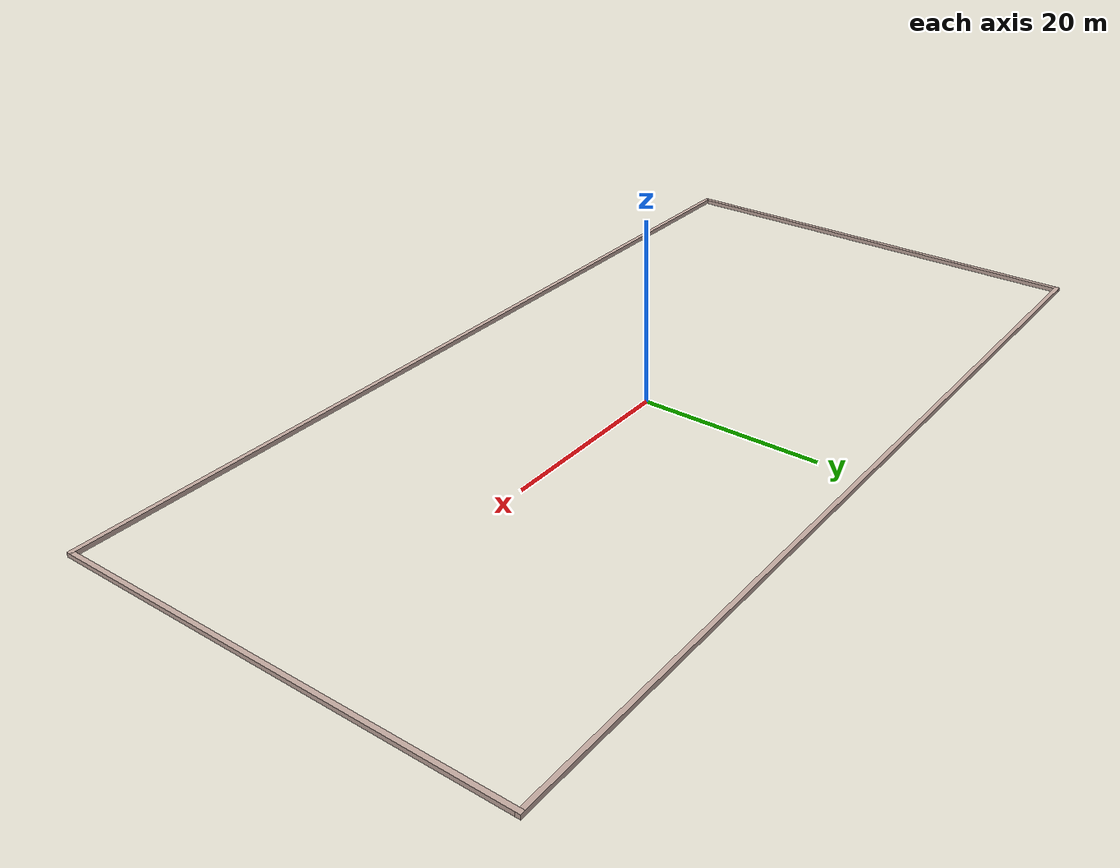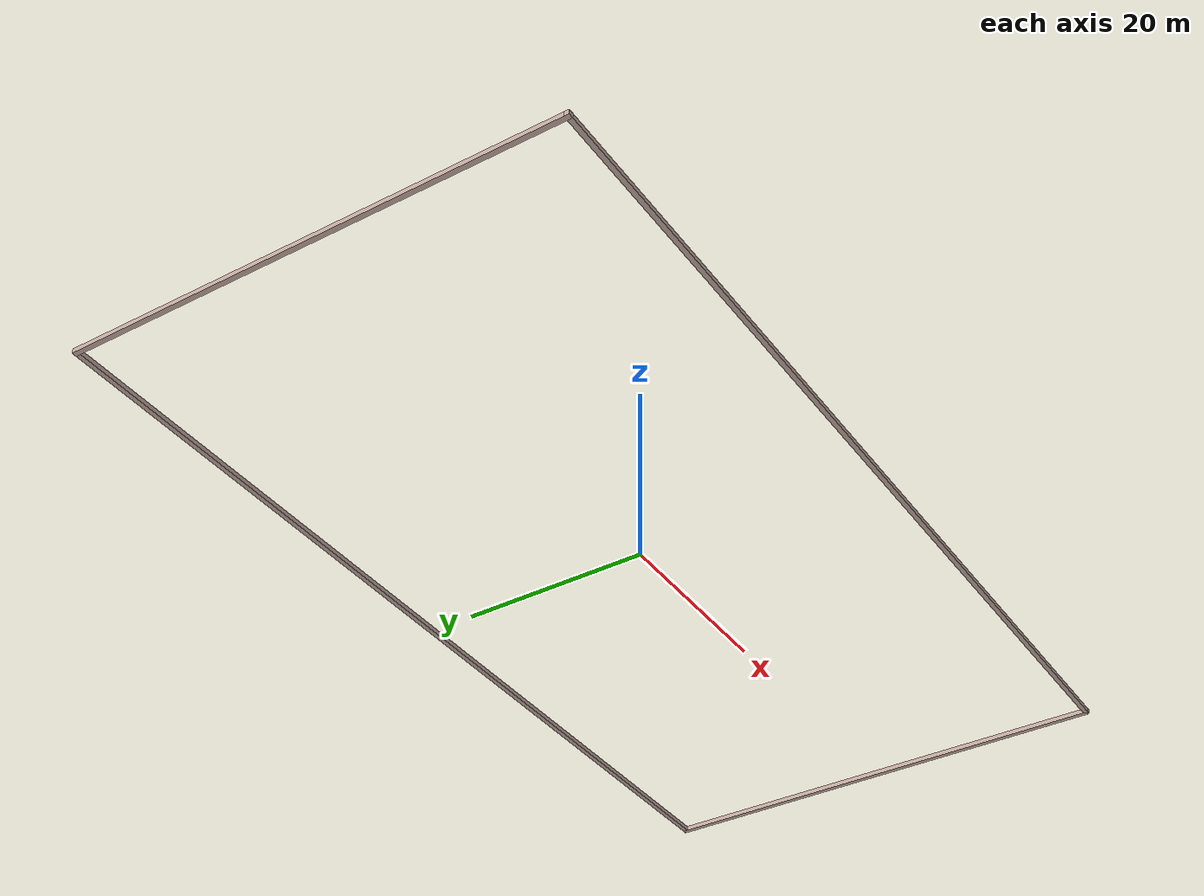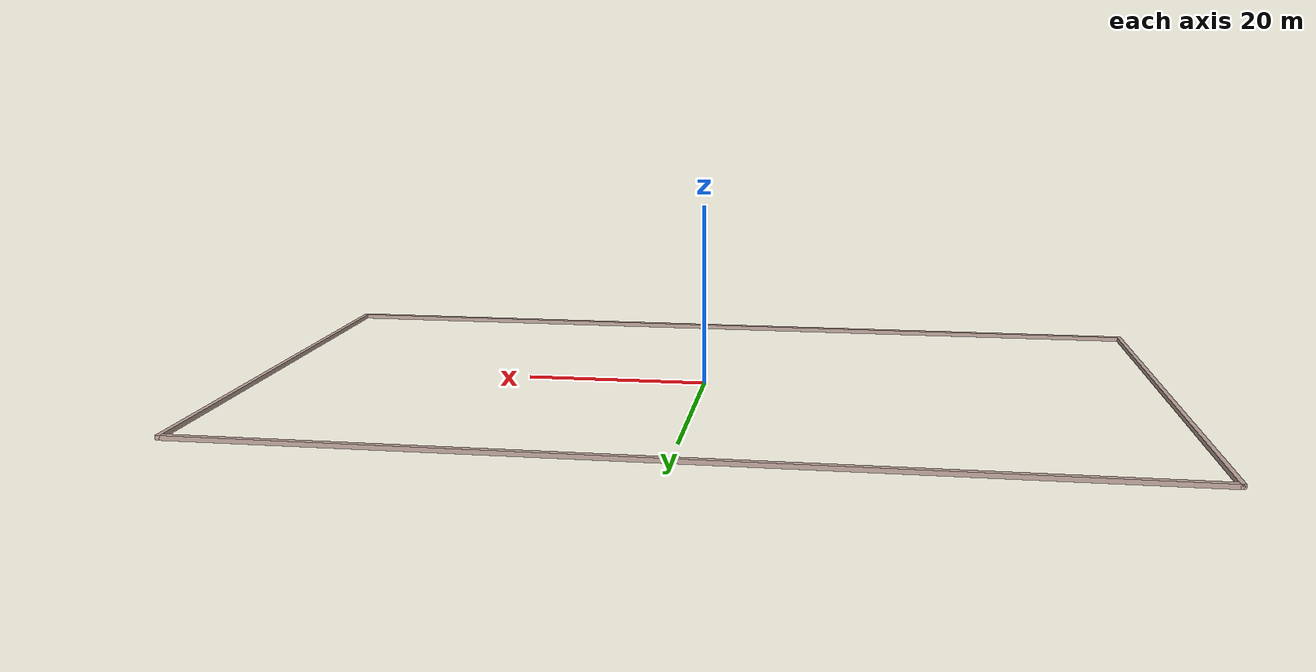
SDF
<?xml version='1.0'?>
<sdf version='1.7'>
  <model name='clay_farm_field_100x50'>
    <pose>0 0 0 0 -0 0</pose>
    <link name='Wall_35'>
      <collision name='Wall_35_Collision'>
        <geometry>
          <box>
            <size>100.5 0.5 0.5</size>
          </box>
        </geometry>
        <pose>0 0 0.25 0 -0 0</pose>
      </collision>
      <visual name='Wall_35_Visual'>
        <pose>0 0 0.25 0 -0 0</pose>
        <geometry>
          <box>
            <size>100.5 0.5 0.5</size>
          </box>
        </geometry>
        <material>
          <script>
            <uri>file://media/materials/scripts/gazebo.material</uri>
            <name>Gazebo/Grey</name>
          </script>
          <ambient>0.760784 0.662745 0.627451 1</ambient>
        </material>
        <meta>
          <layer>0</layer>
        </meta>
      </visual>
      <pose>0 -25 0 0 -0 0</pose>
    </link>
    <link name='Wall_37'>
      <collision name='Wall_37_Collision'>
        <geometry>
          <box>
            <size>50.5 0.5 0.5</size>
          </box>
        </geometry>
        <pose>0 0 0.25 0 -0 0</pose>
      </collision>
      <visual name='Wall_37_Visual'>
        <pose>0 0 0.25 0 -0 0</pose>
        <geometry>
          <box>
            <size>50.5 0.5 0.5</size>
          </box>
        </geometry>
        <material>
          <script>
            <uri>file://media/materials/scripts/gazebo.material</uri>
            <name>Gazebo/Grey</name>
          </script>
          <ambient>0.760784 0.662745 0.627451 1</ambient>
        </material>
        <meta>
          <layer>0</layer>
        </meta>
      </visual>
      <pose>50 0 0 0 -0 1.5708</pose>
    </link>
    <link name='Wall_39'>
      <collision name='Wall_39_Collision'>
        <geometry>
          <box>
            <size>100.5 0.5 0.5</size>
          </box>
        </geometry>
        <pose>0 0 0.25 0 -0 0</pose>
      </collision>
      <visual name='Wall_39_Visual'>
        <pose>0 0 0.25 0 -0 0</pose>
        <geometry>
          <box>
            <size>100.5 0.5 0.5</size>
          </box>
        </geometry>
        <material>
          <script>
            <uri>file://media/materials/scripts/gazebo.material</uri>
            <name>Gazebo/Grey</name>
          </script>
          <ambient>0.760784 0.662745 0.627451 1</ambient>
        </material>
        <meta>
          <layer>0</layer>
        </meta>
      </visual>
      <pose>0 25 0 0 -0 0</pose>
    </link>
    <link name='Wall_41'>
      <collision name='Wall_41_Collision'>
        <geometry>
          <box>
            <size>50.5 0.5 0.5</size>
          </box>
        </geometry>
        <pose>0 0 0.25 0 -0 0</pose>
      </collision>
      <visual name='Wall_41_Visual'>
        <pose>0 0 0.25 0 -0 0</pose>
        <geometry>
          <box>
            <size>50.5 0.5 0.5</size>
          </box>
        </geometry>
        <material>
          <script>
            <uri>file://media/materials/scripts/gazebo.material</uri>
            <name>Gazebo/Grey</name>
          </script>
          <ambient>0.760784 0.662745 0.627451 1</ambient>
        </material>
        <meta>
          <layer>0</layer>
        </meta>
      </visual>
      <pose>-50 0 0 0 -0 1.5708</pose>
    </link>
    <static>1</static>
  </model>
</sdf>
